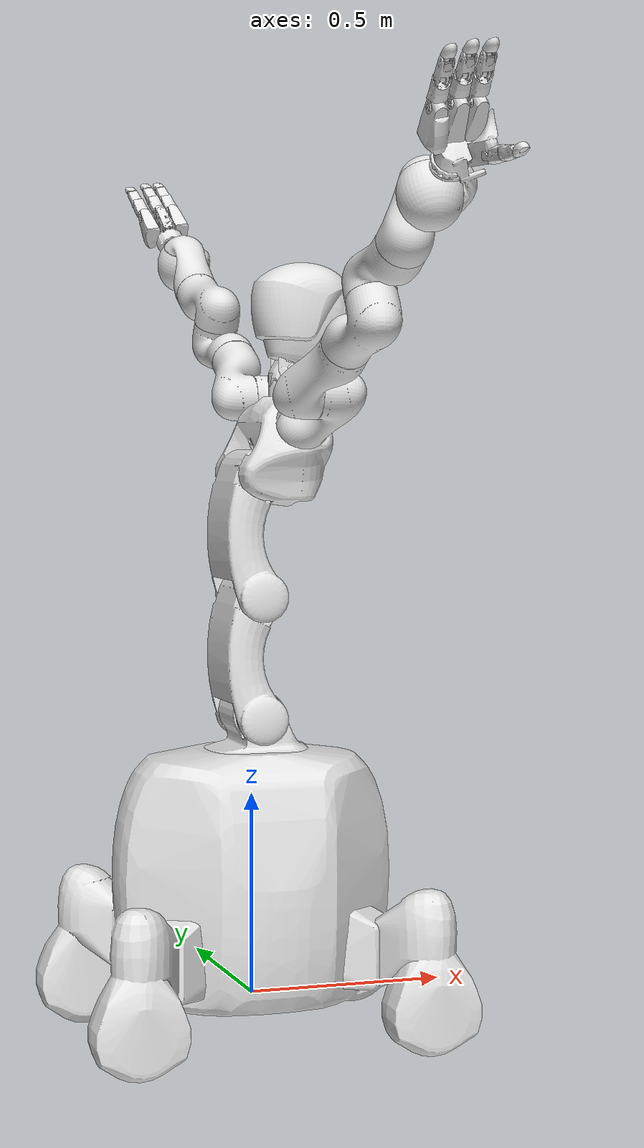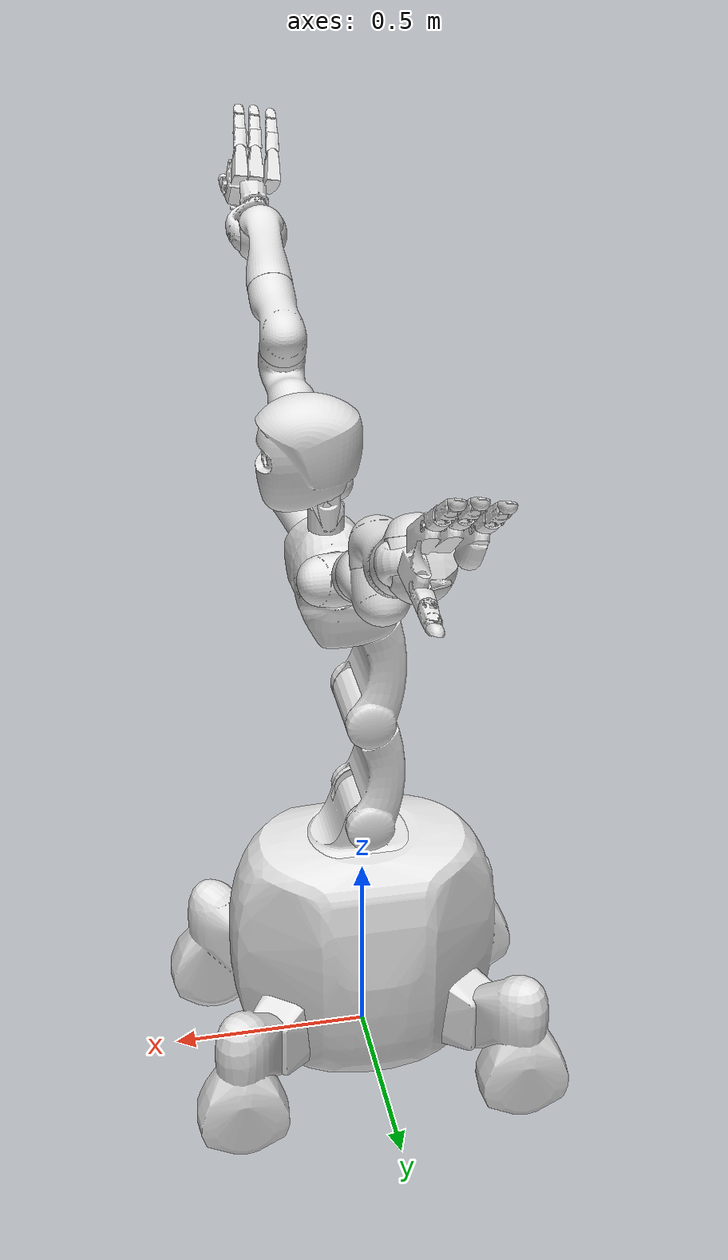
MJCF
<?xml version="1.0" ?>
<mujoco model="rollin-justin">
	<compiler meshdir="rollin-justin/meshes" texturedir="rollin-justin/textures" angle="radian" autolimits="true" balanceinertia="true" boundmass="0.000001" boundinertia="0.000001"/>
	<default>
		<default class="rollin-justin_visual">
			<geom contype="0" conaffinity="0"/>
		</default>
		<default class="rollin-justin_collision">
			<geom rgba="0.9 0.9 0.9 1.0"/>
		</default>
	</default>
	<asset>
		<mesh name="base" file="stl/base.stl" scale="1.0 1.0 1.0"/>
		<mesh name="torso1" file="stl/torso1.stl" scale="1.0 1.0 1.0"/>
		<mesh name="torso2" file="stl/torso2.stl" scale="1.0 1.0 1.0"/>
		<mesh name="torso3" file="stl/torso3.stl" scale="1.0 1.0 1.0"/>
		<mesh name="torso4" file="stl/torso4.stl" scale="1.0 1.0 1.0"/>
		<mesh name="head1" file="stl/head1.stl" scale="1.0 1.0 1.0"/>
		<mesh name="head2" file="stl/head2.stl" scale="1.0 1.0 1.0"/>
		<mesh name="left_arm1" file="stl/left_arm1.stl" scale="1.0 1.0 1.0"/>
		<mesh name="left_arm2" file="stl/left_arm2.stl" scale="1.0 1.0 1.0"/>
		<mesh name="left_arm3" file="stl/left_arm3.stl" scale="1.0 1.0 1.0"/>
		<mesh name="left_arm4" file="stl/left_arm4.stl" scale="1.0 1.0 1.0"/>
		<mesh name="left_arm5" file="stl/left_arm5.stl" scale="1.0 1.0 1.0"/>
		<mesh name="left_arm6" file="stl/left_arm6.stl" scale="1.0 1.0 1.0"/>
		<mesh name="left_arm7" file="stl/left_arm7.stl" scale="1.0 1.0 1.0"/>
		<mesh name="finger_base" file="stl/finger-base.stl" scale="1.0 1.0 1.0"/>
		<mesh name="finger_phaprox" file="stl/finger-phaprox.stl" scale="1.0 1.0 1.0"/>
		<mesh name="finger_phamed" file="stl/finger-phamed.stl" scale="1.0 1.0 1.0"/>
		<mesh name="hii2_geh_phadist_gesamt_asm" file="stl/hii2_geh_phadist_gesamt_asm.stl" scale="1.0 1.0 1.0"/>
		<mesh name="right_arm1" file="stl/right_arm1.stl" scale="1.0 1.0 1.0"/>
		<mesh name="right_arm2" file="stl/right_arm2.stl" scale="1.0 1.0 1.0"/>
		<mesh name="right_arm3" file="stl/right_arm3.stl" scale="1.0 1.0 1.0"/>
		<mesh name="right_arm4" file="stl/right_arm4.stl" scale="1.0 1.0 1.0"/>
		<mesh name="right_arm5" file="stl/right_arm5.stl" scale="1.0 1.0 1.0"/>
		<mesh name="right_arm6" file="stl/right_arm6.stl" scale="1.0 1.0 1.0"/>
		<mesh name="right_arm7" file="stl/right_arm7.stl" scale="1.0 1.0 1.0"/>
		<material name="material_1_003" rgba="0.09175040572881699 0.1469046026468277 0.32767999172210693 1.0" emission="0.0"/>
		<material name="material_1" rgba="0.11468800157308578 0.18363070487976074 0.40959998965263367 1.0" emission="0.0"/>
		<material name="material_3" rgba="0.5600000023841858 0.5499199628829956 0.459199994802475 1.0" emission="0.0"/>
		<material name="material_3_001" rgba="0.7027199864387512 0.7591999769210815 0.800000011920929 1.0" emission="0.0"/>
		<material name="Material_001" rgba="0.6399999856948853 0.6399999856948853 0.6399999856948853 1.0" emission="0.0"/>
		<material name="material_8" rgba="0.5120000243186951 0.5120000243186951 0.5120000243186951 1.0" emission="0.0"/>
		<material name="material_5_001" rgba="0.800000011920929 0.0 0.0 1.0"/>
		<material name="material_5_002" rgba="0.800000011920929 0.0 0.0 1.0"/>
		<material name="material_2_005" rgba="0.5760000348091125 0.5656319856643677 0.47231999039649963 1.0" emission="0.0"/>
		<material name="material_1_006" rgba="0.29600000381469727 0.4480000138282776 0.7360000610351562 1.0" emission="0.0"/>
		<material name="material_4_001_001" rgba="0.4672001004219055 0.4672001004219055 0.4672001004219055 1.0" emission="0.0"/>
		<material name="material_1_006_001_001" rgba="0.1515520066022873 0.22937600314617157 0.3768320083618164 1.0" emission="0.0"/>
		<material name="material_6" rgba="0.13750000298023224 0.19694800674915314 0.25 1.0" emission="0.0"/>
	</asset>
	<worldbody>
		<body name="rollin-justin" pos="0.0 0.0 0.0" quat="1.0 0.0 0.0 0.0">
			<body name="base_link" pos="0.0 0.0 0.0" quat="1.0 0.0 0.0 0.0">
				<inertial mass="224.7355194091797" pos="-0.00018272799206897616 1.6127123672049493e-05 0.23259808123111725" quat="0.5002467036247253 0.5003892779350281 0.4996047914028168 -0.499758780002594" diaginertia="14.472777366638184 23.62435531616211 27.990686416625977"/>
				<geom name="base_link_geom_collision_0_Mobile_Wheel_Flat_Ch_003" type="mesh" pos="0.0 0.0 0.0" quat="1.0 0.0 0.0 0.0" mesh="base" material="material_1_003" class="rollin-justin_collision"/>
				<body name="torso1" pos="0.0 0.0 0.6938999891281128" quat="1.0 0.0 0.0 0.0">
					<inertial mass="1.4712985754013062" pos="0.025275835767388344 0.0007431928534060717 0.6334223747253418" quat="0.8976299166679382 0.019020117819309235 0.4402303695678711 -0.009795311838388443" diaginertia="0.007986108772456646 0.011889693327248096 0.012127798981964588"/>
					<geom name="torso1_geom_collision_0_torso_link2_iv__Geometry_0" type="mesh" pos="0.0 0.0 0.0" quat="1.0 0.0 0.0 0.0" mesh="torso1" material="material_1" class="rollin-justin_collision"/>
					<joint name="torso1_joint" type="hinge" damping="1" pos="0.0 0.0 0.0" range="-1.7453300952911377 3.3161301612854004" axis="0.0 0.0 1.0"/>
					<body name="torso2" pos="0.0 0.0 0.0" quat="0.5000031590461731 -0.5 -0.5 -0.4999968409538269">
						<inertial mass="6.738800525665283" pos="-0.023618027567863464 3.0410037652472965e-06 0.8688623905181885" quat="0.7064671516418457 -0.706275999546051 0.03223329037427902 -0.032238781452178955" diaginertia="0.03799419850111008 0.29220476746559143 0.31166598200798035"/>
						<geom name="torso2_geom_collision_0_torso_link3_iv__Geometry_2" type="mesh" pos="0.0 0.0 0.0" quat="1.0 0.0 0.0 0.0" mesh="torso2" material="material_3" class="rollin-justin_collision"/>
						<joint name="torso2_joint" type="hinge" damping="1" pos="0.0 0.0 0.0" range="-1.2217299938201904 0.5235999822616577" axis="0.0 0.0 1.0"/>
						<body name="torso3" pos="0.30000001192092896 -8.470329472543003e-22 0.0" quat="1.0 2.0536479054491018e-23 -1.6155871338926322e-27 0.0">
							<inertial mass="6.738800525665283" pos="-0.023616129532456398 3.0410037652472965e-06 1.1688623428344727" quat="0.7064671516418457 -0.706275999546051 0.03223329037427902 -0.032238781452178955" diaginertia="0.03799419850111008 0.29220476746559143 0.31166598200798035"/>
							<geom name="torso3_geom_collision_0_torso_link3_iv__Geometry_2" type="mesh" pos="0.0 0.0 0.0" quat="1.0 0.0 0.0 0.0" mesh="torso3" material="material_3" class="rollin-justin_collision"/>
							<joint name="torso3_joint" type="hinge" damping="1" pos="-1.0536230218007488e-21 -1.6653345369377348e-16 1.9006558680808532e-21" range="0.17453299462795258 2.338740110397339" axis="0.0 0.0 1.0"/>
							<body name="torso4" pos="0.30000001192092896 -1.6940658945086007e-21 6.462348535570529e-27" quat="1.0 2.0536479054491018e-23 -1.6155871338926322e-27 0.0">
								<inertial mass="7.379939079284668" pos="0.07681548595428467 -3.699501758092083e-05 1.3429720401763916" quat="0.6380520462989807 0.638219952583313 0.304882287979126 0.30432167649269104" diaginertia="0.07201973348855972 0.11302699148654938 0.1323736608028412"/>
								<geom name="torso4_geom_collision_0_torso_link5_iv__Geometry_2" type="mesh" pos="0.0 0.0 0.0" quat="1.0 0.0 0.0 0.0" mesh="torso4" material="material_3_001" class="rollin-justin_collision"/>
								<joint name="torso4_joint" type="hinge" damping="1" pos="-3.5121412786760217e-22 -5.551115123125783e-17 2.0452735347841183e-21" range="-1.5700000524520874 0.0" axis="0.0 0.0 1.0"/>
								<body name="left_arm1" pos="0.1899999976158142 0.08799999952316284 0.25600001215934753" quat="-1.2815869467885932e-06 0.9659269452095032 -3.433941628827597e-07 -0.25881481170654297">
									<inertial mass="2.278517246246338" pos="0.12034201622009277 0.19148801267147064 1.4466506242752075" quat="0.7060986161231995 0.03782321885228157 -0.7060900926589966 -0.037828341126441956" diaginertia="0.006829763762652874 0.02660626918077469 0.029757529497146606"/>
									<geom name="left_arm1_geom_collision_0_right_lwr_3_link12_34_iv__Geometry_4" type="mesh" pos="0.0 0.0 0.0" quat="1.0 0.0 0.0 0.0" mesh="left_arm1" material="material_5_001" class="rollin-justin_collision"/>
									<joint name="left_arm1_joint" type="hinge" damping="1" pos="3.512076655190666e-22 5.551106189575167e-17 -1.387813853239418e-17" range="-2.967060089111328 2.967060089111328" axis="0.0 0.0 1.0"/>
									<body name="left_arm2" pos="0.0 0.0 0.0" quat="0.7071090340614319 0.7071045637130737 3.921008487941007e-17 3.9296260555625847e-17">
										<inertial mass="2.2794947624206543" pos="0.05568176135420799 0.3209896683692932 1.5214245319366455" quat="0.47288256883621216 0.5257428884506226 -0.4728938043117523 -0.525688111782074" diaginertia="0.006845938973128796 0.02685559168457985 0.03002076782286167"/>
										<geom name="left_arm2_geom_collision_0_left_lwr_3_link23_45_iv_MatrixTransform_Group__Geometry_4" type="mesh" pos="0.0 0.0 0.0" quat="1.0 0.0 0.0 0.0" mesh="left_arm2" material="material_5_002" class="rollin-justin_collision"/>
										<joint name="left_arm2_joint" type="hinge" damping="1" pos="0.0 0.0 -0.0" range="-2.094399929046631 2.094399929046631" axis="0.0 0.0 1.0"/>
										<body name="left_arm3" pos="-2.220446049250313e-16 -0.4000000059604645 0.0" quat="-0.49999797344207764 0.5000028610229492 0.5000001788139343 0.4999989867210388">
											<inertial mass="2.278517246246338" pos="0.08800058811903 0.5540670156478882 1.6186442375183105" quat="0.7060986161231995 0.03782321885228157 -0.7060900926589966 -0.037828341126441956" diaginertia="0.006829763762652874 0.02660626918077469 0.029757529497146606"/>
											<geom name="left_arm3_geom_collision_0_right_lwr_3_link12_34_iv__Geometry_4" type="mesh" pos="0.0 0.0 0.0" quat="1.0 0.0 0.0 0.0" mesh="left_arm3" material="material_5_001" class="rollin-justin_collision"/>
											<joint name="left_arm3_joint" type="hinge" damping="1" pos="5.55122232573317e-17 9.614831788194643e-17 2.2204426081789649e-16" range="-2.967060089111328 2.967060089111328" axis="0.0 0.0 1.0"/>
											<body name="left_arm4" pos="-1.3877787807814457e-17 0.0 0.0" quat="0.7071090340614319 0.7071045637130737 -5.4967650555418635e-17 -6.3249128903851494e-18">
												<inertial mass="2.2794947624206543" pos="0.08800823241472244 0.6512435078620911 1.7494093179702759" quat="0.47288256883621216 0.5257428884506226 -0.4728938043117523 -0.525688111782074" diaginertia="0.006845938973128796 0.02685559168457985 0.03002076782286167"/>
												<geom name="left_arm4_geom_collision_0_left_lwr_3_link23_45_iv_MatrixTransform_Group__Geometry_4" type="mesh" pos="0.0 0.0 0.0" quat="1.0 0.0 0.0 0.0" mesh="left_arm4" material="material_5_002" class="rollin-justin_collision"/>
												<joint name="left_arm4_joint" type="hinge" damping="1" pos="1.3877787807814457e-17 9.721435226537409e-23 -1.0364679981719312e-22" range="-2.094399929046631 2.094399929046631" axis="0.0 0.0 1.0"/>
												<body name="left_arm5" pos="1.3877787807814457e-17 -0.38999998569488525 -2.220446049250313e-16" quat="0.7071090340614319 -0.7071045637130737 1.4973237575545396e-22 5.98937076086506e-22">
													<inertial mass="1.2786157131195068" pos="0.08799681067466736 0.8377841711044312 1.8480994701385498" quat="0.028897732496261597 0.7065482139587402 -0.02890058048069477 -0.706483781337738" diaginertia="0.0032310120295733213 0.01969139277935028 0.02106323279440403"/>
													<geom name="left_arm5_geom_collision_0_left_lwr_3_link56_iv_MatrixTransform_Group__Geometry_1" type="mesh" pos="0.0 0.0 0.0" quat="1.0 0.0 0.0 0.0" mesh="left_arm5" material="material_2_005" class="rollin-justin_collision"/>
													<joint name="left_arm5_joint" type="hinge" damping="1" pos="-1.3879634074941675e-17 -1.4869411926143026e-17 -2.478076149415833e-16" range="-2.967060089111328 2.967060089111328" axis="0.0 0.0 1.0"/>
													<body name="left_arm6" pos="0.0 0.0 0.0" quat="0.5000038146972656 -0.4999982714653015 0.49999934434890747 0.4999985694885254">
														<inertial mass="1.3991453647613525" pos="0.08615120500326157 0.9439283013343811 1.8723913431167603" quat="0.7144667506217957 0.6996641755104065 0.00035026270779781044 -0.0026795067824423313" diaginertia="0.0027283544186502695 0.002825313014909625 0.0028757851105183363"/>
														<geom name="left_arm6_geom_collision_0_left_lwr_3_link67_iv_MatrixTransform__Geometry_0" type="mesh" pos="0.0 0.0 0.0" quat="1.0 0.0 0.0 0.0" mesh="left_arm6" material="material_1_006" class="rollin-justin_collision"/>
														<joint name="left_arm6_joint" type="hinge" damping="1" pos="-0.0 0.0 0.0" range="-0.785398006439209 1.3962599039077759" axis="0.0 0.0 1.0"/>
														<body name="left_arm7" pos="2.220446049250313e-16 -1.3877787807814457e-17 0.0" quat="0.5000036954879761 -0.49999913573265076 -0.499999463558197 -0.49999767541885376">
															<inertial mass="1.0555163621902466" pos="0.08725663274526596 1.0829014778137207 1.9724704027175903" quat="-0.5496354103088379 -0.4028584659099579 0.41921886801719666 0.599884569644928" diaginertia="0.0023810488637536764 0.03413848578929901 0.03500598669052124"/>
															<geom name="left_arm7_geom_collision_0_left_lwr_3_link7_bsa_iv_MatrixTransform_Group__Geometry_3_003" type="mesh" pos="0.0 0.0 0.0" quat="1.0 0.0 0.0 0.0" mesh="left_arm7" material="material_4_001_001" class="rollin-justin_collision"/>
															<joint name="left_arm7_joint" type="hinge" damping="1" pos="1.2015992018956641e-17 2.220446578645905e-16 -6.94176173909095e-18" range="-0.785398006439209 2.3561899662017822" axis="0.0 0.0 1.0"/>
															<body name="left_1thumb_base" pos="-0.05040000006556511 0.2029000073671341 -0.04619999974966049" quat="0.3802274763584137 0.28664183616638184 0.5528058409690857 0.6838634610176086">
																<body name="left_1thumb1" pos="0.0 0.0 0.0" quat="1.0 6.071532165918825e-18 3.0814879110195774e-33 8.673617379884035e-19">
																	<joint name="left_1thumb1_joint" type="hinge" damping="1" pos="0.0 0.0 0.0" range="-0.5235990285873413 0.5235990285873413" axis="0.0 0.0 1.0"/>
																	<body name="left_1thumb2" pos="0.0 0.0 0.0" quat="0.7071090340614319 0.7071045637130737 2.3919178109056975e-17 -8.58644660539136e-18">
																		<inertial mass="0.06310664862394333" pos="0.134935662150383 1.1825547218322754 1.9325861930847168" quat="0.7089327573776245 -0.7050617337226868 0.016155000776052475 -0.006425226107239723" diaginertia="1.0902839676418807e-05 0.0001451449206797406 0.00014662362809758633"/>
																		<geom name="left_1thumb2_geom_collision_0_finger_phaprox_ShapeIndexedFaceSet_001" type="mesh" pos="0.0 0.0 0.0" quat="1.0 0.0 0.0 0.0" mesh="finger_phaprox" class="rollin-justin_collision"/>
																		<joint name="left_1thumb2_joint" type="hinge" damping="1" pos="0.0 0.0 0.0" range="-0.34906598925590515 1.500980019569397" axis="0.0 0.0 1.0"/>
																		<body name="left_1thumb3" pos="0.07500000298023224 0.0 -1.1102230246251565e-16" quat="1.0 0.0 0.0 0.0">
																			<inertial mass="0.026522383093833923" pos="0.13785885274410248 1.2356280088424683 1.930206060409546" quat="0.7099601626396179 -0.7039278745651245 0.006069454830139875 -0.02013099379837513" diaginertia="4.763814104080666e-06 1.7667984138824977e-05 1.865063313744031e-05"/>
																			<geom name="left_1thumb3_geom_collision_0_finger_phamed_ShapeIndexedFaceSet_001" type="mesh" pos="0.0 0.0 0.0" quat="1.0 0.0 0.0 0.0" mesh="finger_phamed" class="rollin-justin_collision"/>
																			<joint name="left_1thumb3_joint" type="hinge" damping="1" pos="-1.119974838846279e-17 1.4848274483642091e-16 -1.5067052506006036e-16" range="-0.17453299462795258 1.7627800703048706" axis="0.0 0.0 1.0"/>
																			<body name="left_1thumb4" pos="0.03999000042676926 -2.220446049250313e-16 -1.1102230246251565e-16" quat="0.7071090340614319 0.0 0.0 -0.7071045637130737">
																				<inertial mass="0.027972880750894547" pos="0.1380554437637329 1.279028296470642 1.9312243461608887" quat="0.4448316991329193 0.49165210127830505 0.5386440753936768 0.5198706984519958" diaginertia="2.3384206997434376e-06 1.9123181118629873e-05 1.9700737539096735e-05"/>
																				<geom name="left_1thumb4_geom_collision_0_hii2_geh_phadist_gesamt_asm_ShapeIndexedFaceSet_001" type="mesh" pos="0.0 0.0 0.0" quat="1.0 0.0 0.0 0.0" mesh="hii2_geh_phadist_gesamt_asm" class="rollin-justin_collision"/>
																				<joint name="left_1thumb4_joint" type="hinge" damping="1" pos="2.1631920483207407e-16 1.1503569015039434e-16 4.871265634708045e-17" range="-0.17453299462795258 1.7627800703048706" axis="0.0 0.0 1.0"/>
																			</body>
																		</body>
																	</body>
																</body>
															</body>
															<body name="left_2tip_base" pos="0.04820000007748604 0.24089999496936798 -0.023600000888109207" quat="-0.5390362739562988 0.5562926530838013 0.5027128458023071 -0.3837422728538513">
																<body name="left_2tip1" pos="4.440892098500626e-16 5.551115123125783e-17 1.1102230246251565e-16" quat="1.0 3.469446951953614e-18 -1.3877787807814457e-17 -3.469446951953614e-18">
																	<joint name="left_2tip1_joint" type="hinge" damping="1" pos="-6.3397650010016e-17 -4.565960218931868e-16 -1.1111124257633858e-17" range="-0.5235990285873413 0.5235990285873413" axis="0.0 0.0 1.0"/>
																	<body name="left_2tip2" pos="4.440892098500626e-16 5.551115123125783e-17 1.1102230246251565e-16" quat="0.7071090340614319 0.7071045637130737 9.813047093147255e-18 4.415864988061671e-17">
																		<inertial mass="0.06310664862394333" pos="0.10744867473840714 1.1544967889785767 2.0699188709259033" quat="0.7089327573776245 -0.7050617337226868 0.016155000776052475 -0.006425226107239723" diaginertia="1.0902839676418807e-05 0.0001451449206797406 0.00014662362809758633"/>
																		<geom name="left_2tip2_geom_collision_0_finger_phaprox_ShapeIndexedFaceSet_001" type="mesh" pos="0.0 0.0 0.0" quat="1.0 0.0 0.0 0.0" mesh="finger_phaprox" class="rollin-justin_collision"/>
																		<joint name="left_2tip2_joint" type="hinge" damping="1" pos="-6.3397650010016e-17 -4.565960218931868e-16 -1.1111124257633858e-17" range="-0.34906598925590515 1.500980019569397" axis="0.0 0.0 1.0"/>
																		<body name="left_2tip3" pos="0.07500000298023224 -1.1102230246251565e-16 -1.6653345369377348e-16" quat="1.0 -6.938893903907228e-18 -6.938893903907228e-18 5.551115123125783e-17">
																			<inertial mass="0.026522383093833923" pos="0.09987806528806686 1.1941273212432861 2.104604482650757" quat="0.7099601626396179 -0.7039278745651245 0.006069454830139875 -0.02013099379837513" diaginertia="4.763814104080666e-06 1.7667984138824977e-05 1.865063313744031e-05"/>
																			<geom name="left_2tip3_geom_collision_0_finger_phamed_ShapeIndexedFaceSet_001" type="mesh" pos="0.0 0.0 0.0" quat="1.0 0.0 0.0 0.0" mesh="finger_phamed" class="rollin-justin_collision"/>
																			<joint name="left_2tip3_joint" type="hinge" damping="1" pos="2.641402895189979e-16 -1.252385990467664e-16 5.870309960177909e-16" range="-0.17453299462795258 1.7627800703048706" axis="0.0 0.0 1.0"/>
																			<body name="left_2tip4" pos="0.03999999910593033 1.1102230246251565e-16 -1.1102230246251565e-16" quat="0.7071090340614319 1.2416987454718263e-22 -5.3971632453676184e-17 -0.7071045637130737">
																				<inertial mass="0.027972880750894547" pos="0.09557826817035675 1.2286394834518433 2.130603551864624" quat="0.4448316991329193 0.49165210127830505 0.5386440753936768 0.5198706984519958" diaginertia="2.3384206997434376e-06 1.9123181118629873e-05 1.9700737539096735e-05"/>
																				<geom name="left_2tip4_geom_collision_0_hii2_geh_phadist_gesamt_asm_ShapeIndexedFaceSet_001" type="mesh" pos="0.0 0.0 0.0" quat="1.0 0.0 0.0 0.0" mesh="hii2_geh_phadist_gesamt_asm" class="rollin-justin_collision"/>
																				<joint name="left_2tip4_joint" type="hinge" damping="1" pos="-5.628677533059165e-17 -1.047256514385293e-16 -4.220430068758421e-16" range="-0.17453299462795258 1.7627800703048706" axis="0.0 0.0 1.0"/>
																			</body>
																		</body>
																	</body>
																</body>
															</body>
															<body name="left_3middle_base" pos="0.04690000042319298 0.2353000044822693 0.016289999708533287" quat="-0.5390362739562988 0.5562926530838013 0.5027128458023071 -0.3837422728538513">
																<inertial mass="0.10227017104625702" pos="0.037921417504549026 0.1940096616744995 0.011176788248121738" quat="-0.6848092675209045 0.7286957502365112 -0.004266366828233004 -0.004536712542176247" diaginertia="2.836716521414928e-05 0.000272170000243932 0.00028322578873485327"/>
																<geom name="left_3middle_base_geom_collision_0_finger_base_ShapeIndexedFaceSet_001" type="mesh" pos="0.0 0.0 0.0" quat="1.0 0.0 0.0 0.0" mesh="finger_base" class="rollin-justin_collision"/>
																<body name="left_3middle1" pos="4.440892098500626e-16 5.551115123125783e-17 0.0" quat="1.0 3.469446951953614e-18 -1.3877787807814457e-17 -3.469446951953614e-18">
																	<joint name="left_3middle1_joint" type="hinge" damping="1" pos="9.848323864730804e-18 -4.3779276396686817e-16 -9.239713321335726e-17" range="-0.5235990285873413 0.5235990285873413" axis="0.0 0.0 1.0"/>
																	<body name="left_3middle2" pos="4.440892098500626e-16 5.551115123125783e-17 0.0" quat="0.7071090340614319 0.7071045637130737 9.813047093147255e-18 4.415864988061671e-17">
																		<inertial mass="0.06310664862394333" pos="0.06755862385034561 1.1502968072891235 2.0659937858581543" quat="0.7089327573776245 -0.7050617337226868 0.016155000776052475 -0.006425226107239723" diaginertia="1.0902839676418807e-05 0.0001451449206797406 0.00014662362809758633"/>
																		<geom name="left_3middle2_geom_collision_0_finger_phaprox_ShapeIndexedFaceSet_001" type="mesh" pos="0.0 0.0 0.0" quat="1.0 0.0 0.0 0.0" mesh="finger_phaprox" class="rollin-justin_collision"/>
																		<joint name="left_3middle2_joint" type="hinge" damping="1" pos="9.848323864730804e-18 -4.3779276396686817e-16 -9.239713321335726e-17" range="-0.34906598925590515 1.500980019569397" axis="0.0 0.0 1.0"/>
																		<body name="left_3middle3" pos="0.07498999685049057 -2.220446049250313e-16 0.0" quat="1.0 -6.938893903907228e-18 -6.938893903907228e-18 5.551115123125783e-17">
																			<inertial mass="0.026522383093833923" pos="0.05998916178941727 1.1899199485778809 2.100672721862793" quat="0.7099601626396179 -0.7039278745651245 0.006069454830139875 -0.02013099379837513" diaginertia="4.763814104080666e-06 1.7667984138824977e-05 1.865063313744031e-05"/>
																			<geom name="left_3middle3_geom_collision_0_finger_phamed_ShapeIndexedFaceSet_001" type="mesh" pos="0.0 0.0 0.0" quat="1.0 0.0 0.0 0.0" mesh="finger_phamed" class="rollin-justin_collision"/>
																			<joint name="left_3middle3_joint" type="hinge" damping="1" pos="2.287408238895502e-16 7.966926542333442e-17 5.466105308352565e-16" range="-0.17453299462795258 1.7627800703048706" axis="0.0 0.0 1.0"/>
																			<body name="left_3middle4" pos="0.03999999910593033 -1.1102230246251565e-16 -5.551115123125783e-17" quat="0.7071090340614319 1.2416987454718263e-22 -5.3971632453676184e-17 -0.7071045637130737">
																				<inertial mass="0.027972880750894547" pos="0.05568936839699745 1.224432110786438 2.12667179107666" quat="0.4448316991329193 0.49165210127830505 0.5386440753936768 0.5198706984519958" diaginertia="2.3384206997434376e-06 1.9123181118629873e-05 1.9700737539096735e-05"/>
																				<geom name="left_3middle4_geom_collision_0_hii2_geh_phadist_gesamt_asm_ShapeIndexedFaceSet_001" type="mesh" pos="0.0 0.0 0.0" quat="1.0 0.0 0.0 0.0" mesh="hii2_geh_phadist_gesamt_asm" class="rollin-justin_collision"/>
																				<joint name="left_3middle4_joint" type="hinge" damping="1" pos="7.1989594884939e-17 8.461759219652464e-17 -4.1312086473527774e-16" range="-0.17453299462795258 1.7627800703048706" axis="0.0 0.0 1.0"/>
																			</body>
																		</body>
																	</body>
																</body>
															</body>
															<body name="left_4ring_base" pos="0.03739999979734421 0.22990000247955322 0.062300000339746475" quat="-0.5390362739562988 0.5562926530838013 0.5027128458023071 -0.3837422728538513">
																<body name="left_4ring1" pos="4.440892098500626e-16 5.551115123125783e-17 -1.1102230246251565e-16" quat="1.0 3.469446951953614e-18 -1.3877787807814457e-17 -3.469446951953614e-18">
																	<joint name="left_4ring1_joint" type="hinge" damping="1" pos="8.309429608511639e-17 -4.1898945310099036e-16 -1.7368313968753882e-16" range="-0.5235990285873413 0.5235990285873413" axis="0.0 0.0 1.0"/>
																	<body name="left_4ring2" pos="4.440892098500626e-16 5.551115123125783e-17 -1.1102230246251565e-16" quat="0.7071090340614319 0.7071045637130737 9.813047093147255e-18 4.415864988061671e-17">
																		<inertial mass="0.06310664862394333" pos="0.021548444405198097 1.1503700017929077 2.055067300796509" quat="0.7089327573776245 -0.7050617337226868 0.016155000776052475 -0.006425226107239723" diaginertia="1.0902839676418807e-05 0.0001451449206797406 0.00014662362809758633"/>
																		<geom name="left_4ring2_geom_collision_0_finger_phaprox_ShapeIndexedFaceSet_001" type="mesh" pos="0.0 0.0 0.0" quat="1.0 0.0 0.0 0.0" mesh="finger_phaprox" class="rollin-justin_collision"/>
																		<joint name="left_4ring2_joint" type="hinge" damping="1" pos="8.309429608511639e-17 -4.1898945310099036e-16 -1.7368313968753882e-16" range="-0.34906598925590515 1.500980019569397" axis="0.0 0.0 1.0"/>
																		<body name="left_4ring3" pos="0.07500000298023224 -2.220446049250313e-16 -5.551115123125783e-17" quat="1.0 -6.938893903907228e-18 -6.938893903907228e-18 5.551115123125783e-17">
																			<inertial mass="0.026522383093833923" pos="0.013977831229567528 1.1900005340576172 2.0897529125213623" quat="0.7099601626396179 -0.7039278745651245 0.006069454830139875 -0.02013099379837513" diaginertia="4.763814104080666e-06 1.7667984138824977e-05 1.865063313744031e-05"/>
																			<geom name="left_4ring3_geom_collision_0_finger_phamed_ShapeIndexedFaceSet_001" type="mesh" pos="0.0 0.0 0.0" quat="1.0 0.0 0.0 0.0" mesh="finger_phamed" class="rollin-justin_collision"/>
																			<joint name="left_4ring3_joint" type="hinge" damping="1" pos="2.222708156615074e-16 8.562226591619685e-17 1.6792266713660934e-16" range="-0.17453299462795258 1.7627800703048706" axis="0.0 0.0 1.0"/>
																			<body name="left_4ring4" pos="0.03999999910593033 -1.1102230246251565e-16 -5.551115123125783e-17" quat="0.7071090340614319 1.2416987454718263e-22 -5.3971632453676184e-17 -0.7071045637130737">
																				<inertial mass="0.027972880750894547" pos="0.009678036905825138 1.2245126962661743 2.1157519817352295" quat="0.4448316991329193 0.49165210127830505 0.5386440753936768 0.5198706984519958" diaginertia="2.3384206997434376e-06 1.9123181118629873e-05 1.9700737539096735e-05"/>
																				<geom name="left_4ring4_geom_collision_0_hii2_geh_phadist_gesamt_asm_ShapeIndexedFaceSet_001" type="mesh" pos="0.0 0.0 0.0" quat="1.0 0.0 0.0 0.0" mesh="hii2_geh_phadist_gesamt_asm" class="rollin-justin_collision"/>
																				<joint name="left_4ring4_joint" type="hinge" damping="1" pos="1.2306275669372733e-16 2.939276457121837e-17 2.4551354200923077e-17" range="-0.17453299462795258 1.7627800703048706" axis="0.0 0.0 1.0"/>
																			</body>
																		</body>
																	</body>
																</body>
															</body>
															<body name="left_palm" pos="0.0 0.10109999775886536 0.0" quat="9.381886343362567e-07 9.381827226206951e-07 0.7071045637130737 0.7071090340614319"/>
														</body>
													</body>
												</body>
											</body>
										</body>
									</body>
								</body>
								<body name="right_arm1" pos="0.1899999976158142 0.08799999952316284 -0.25600001215934753" quat="0.25881481170654297 9.381927839058335e-07 0.9659269452095032 9.381927839058335e-07">
									<inertial mass="2.278517246246338" pos="0.12034415453672409 -0.19148379564285278 1.446655035018921" quat="-0.7060900926589966 -0.037828389555215836 0.7060985565185547 0.03782327473163605" diaginertia="0.006829763762652874 0.02660626731812954 0.029757527634501457"/>
									<geom name="right_arm1_geom_collision_0_right_lwr_3_link12_34_iv__Geometry_4" type="mesh" pos="0.0 0.0 0.0" quat="1.0 0.0 0.0 0.0" mesh="right_arm1" material="material_5_001" class="rollin-justin_collision"/>
									<joint name="right_arm1_joint" type="hinge" damping="1" pos="1.75603840332598e-21 2.7755583556562794e-16 1.3876031703374007e-17" range="-2.967060089111328 2.967060089111328" axis="0.0 0.0 1.0"/>
									<body name="right_arm2" pos="-2.220446049250313e-16 0.0 -1.1102230246251565e-16" quat="0.7071090340614319 0.7071045637130737 -2.994620756947174e-22 5.989454064576651e-22">
										<inertial mass="2.2794950008392334" pos="0.05568613484501839 -0.3209926187992096 1.5214184522628784" quat="-0.4728938639163971 -0.5256880521774292 0.47288259863853455 0.5257428288459778" diaginertia="0.006845939438790083 0.026855593547225 0.03002077154815197"/>
										<geom name="right_arm2_geom_collision_0_left_lwr_3_link23_45_iv_MatrixTransform_Group__Geometry_4" type="mesh" pos="0.0 0.0 0.0" quat="1.0 0.0 0.0 0.0" mesh="right_arm2" material="material_5_002" class="rollin-justin_collision"/>
										<joint name="right_arm2_joint" type="hinge" damping="1" pos="-9.614862228441185e-17 2.2204404905965967e-16 5.551252104235221e-17" range="-2.094399929046631 2.094399929046631" axis="0.0 0.0 1.0"/>
										<body name="right_arm3" pos="2.220446049250313e-16 0.4000000059604645 -1.3877787807814457e-17" quat="-0.5 0.49999889731407166 0.49999815225601196 0.5000029802322388">
											<inertial mass="2.278517246246338" pos="0.08801484107971191 -0.5540659427642822 1.6186442375183105" quat="-0.7060900926589966 -0.037828389555215836 0.7060985565185547 0.03782327473163605" diaginertia="0.006829763762652874 0.02660626731812954 0.029757527634501457"/>
											<geom name="right_arm3_geom_collision_0_right_lwr_3_link12_34_iv__Geometry_4" type="mesh" pos="0.0 0.0 0.0" quat="1.0 0.0 0.0 0.0" mesh="right_arm3" material="material_5_001" class="rollin-justin_collision"/>
											<joint name="right_arm3_joint" type="hinge" damping="1" pos="-1.2018573649648419e-17 6.935169936789515e-18 2.220447108041497e-16" range="-2.967060089111328 2.967060089111328" axis="0.0 0.0 1.0"/>
											<body name="right_arm4" pos="0.0 0.0 0.0" quat="0.7071090340614319 0.7071045637130737 1.497364021015142e-22 -1.4973573314746658e-22">
												<inertial mass="2.2794950008392334" pos="0.08801046013832092 -0.6512423753738403 1.7494093179702759" quat="-0.4728938639163971 -0.5256880521774292 0.47288259863853455 0.5257428288459778" diaginertia="0.006845939438790083 0.026855593547225 0.03002077154815197"/>
												<geom name="right_arm4_geom_collision_0_left_lwr_3_link23_45_iv_MatrixTransform_Group__Geometry_4" type="mesh" pos="0.0 0.0 0.0" quat="1.0 0.0 0.0 0.0" mesh="right_arm4" material="material_5_002" class="rollin-justin_collision"/>
												<joint name="right_arm4_joint" type="hinge" damping="1" pos="-0.0 0.0 0.0" range="-2.094399929046631 2.094399929046631" axis="0.0 0.0 1.0"/>
												<body name="right_arm5" pos="0.0 0.38999998569488525 2.220446049250313e-16" quat="-9.381886343362567e-07 -9.381827226206951e-07 0.7071045637130737 0.7071090340614319">
													<inertial mass="1.27861487865448" pos="0.08802531659603119 -0.8377830982208252 1.8480994701385498" quat="-0.7064837217330933 -0.02890048362314701 0.7065482139587402 0.028897924348711967" diaginertia="0.0032310073729604483 0.01969137229025364 0.02106321230530739"/>
													<geom name="right_arm5_geom_collision_0_left_lwr_3_link56_iv_MatrixTransform_Group__Geometry_1" type="mesh" pos="0.0 0.0 0.0" quat="1.0 0.0 0.0 0.0" mesh="right_arm5" material="material_2_005" class="rollin-justin_collision"/>
													<joint name="right_arm5_joint" type="hinge" damping="1" pos="-2.4494946473744053e-21 -2.0716787410482841e-16 -1.3678900501332207e-16" range="-2.967060089111328 2.967060089111328" axis="0.0 0.0 1.0"/>
													<body name="right_arm6" pos="0.0 -2.220446049250313e-16 0.0" quat="0.5000036358833313 0.4999975860118866 -0.4999995231628418 0.4999992549419403">
														<inertial mass="1.3991397619247437" pos="0.08616156876087189 -0.9439118504524231 1.872382402420044" quat="0.7144690155982971 -0.6996618509292603 0.0003507633809931576 0.002678107703104615" diaginertia="0.002728336723521352 0.002825294155627489 0.0028757681138813496"/>
														<geom name="right_arm6_geom_collision_0_left_lwr_3_link67_iv_MatrixTransform__Geometry_0_003" type="mesh" pos="0.0 0.0 0.0" quat="1.0 0.0 0.0 0.0" mesh="right_arm6" material="material_1_006_001_001" class="rollin-justin_collision"/>
														<joint name="right_arm6_joint" type="hinge" damping="1" pos="2.2572541167769954e-21 1.110199069474617e-16 -1.9229765485040753e-16" range="-0.785398006439209 1.3962599039077759" axis="0.0 0.0 1.0"/>
														<body name="right_arm7" pos="0.0 0.0 0.0" quat="0.5000005960464478 0.5000025629997253 0.4999975562095642 -0.4999992847442627">
															<inertial mass="0.901043713092804" pos="0.09258520603179932 -1.0850979089736938 1.976768970489502" quat="-0.35568782687187195 -0.5755832195281982 0.6251466274261475 0.38907817006111145" diaginertia="0.0021221847273409367 0.03040979616343975 0.031320925801992416"/>
															<geom name="right_arm7_geom_collision_0_aVis_Hand_right_Group__Geometry_5" type="mesh" pos="0.0 0.0 0.0" quat="1.0 0.0 0.0 0.0" mesh="right_arm7" material="material_6" class="rollin-justin_collision"/>
															<joint name="right_arm7_joint" type="hinge" damping="1" pos="0.0 0.0 -0.0" range="-0.785398006439209 2.3561899662017822" axis="0.0 0.0 1.0"/>
															<body name="right_1thumb_base" pos="-0.05040000006556511 0.2029000073671341 0.04619999974966049" quat="0.287274032831192 0.3797719180583954 0.6829645037651062 0.5539010763168335">
																<body name="right_1thumb1" pos="0.0 0.0 2.220446049250313e-16" quat="1.0 1.3877787807814457e-17 1.734723475976807e-18 -1.3010426069826053e-18">
																	<joint name="right_1thumb1_joint" type="hinge" damping="1" pos="1.2167786278805022e-17 -4.9424385707178226e-17 -2.1613186496694306e-16" range="-0.5235990285873413 0.5235990285873413" axis="0.0 0.0 1.0"/>
																	<body name="right_1thumb2" pos="0.0 0.0 2.220446049250313e-16" quat="0.7071090340614319 0.7071045637130737 3.97693631982531e-18 -3.3828159128106293e-18">
																		<inertial mass="0.06310664862394333" pos="0.1365979164838791 -1.1825270652770996 1.932967185974121" quat="0.7089327573776245 -0.7050617337226868 0.016155000776052475 -0.006425226107239723" diaginertia="1.0902839676418807e-05 0.0001451449206797406 0.00014662362809758633"/>
																		<geom name="right_1thumb2_geom_collision_0_finger_phaprox_ShapeIndexedFaceSet_001" type="mesh" pos="0.0 0.0 0.0" quat="1.0 0.0 0.0 0.0" mesh="finger_phaprox" class="rollin-justin_collision"/>
																		<joint name="right_1thumb2_joint" type="hinge" damping="1" pos="1.2167786278805022e-17 -4.9424385707178226e-17 -2.1613186496694306e-16" range="-0.34906598925590515 1.500980019569397" axis="0.0 0.0 1.0"/>
																		<body name="right_1thumb3" pos="0.07500000298023224 4.440892098500626e-16 0.0" quat="1.0 1.3877787807814457e-17 8.673617379884035e-19 5.7777898331617076e-34">
																			<inertial mass="0.026522383093833923" pos="0.1365964561700821 -1.2356464862823486 1.929916501045227" quat="0.7099601626396179 -0.7039278745651245 0.006069454830139875 -0.02013099379837513" diaginertia="4.763814104080666e-06 1.7667984138824977e-05 1.865063313744031e-05"/>
																			<geom name="right_1thumb3_geom_collision_0_finger_phamed_ShapeIndexedFaceSet_001" type="mesh" pos="0.0 0.0 0.0" quat="1.0 0.0 0.0 0.0" mesh="finger_phamed" class="rollin-justin_collision"/>
																			<joint name="right_1thumb3_joint" type="hinge" damping="1" pos="4.444228349521624e-16 1.7308264626749473e-17 -3.3724550620480964e-17" range="-0.17453299462795258 1.7627800703048706" axis="0.0 0.0 1.0"/>
																			<body name="right_1thumb4" pos="0.03999999910593033 2.220446049250313e-16 0.0" quat="0.7071090340614319 3.679861433862097e-18 1.4719508601174942e-17 -0.7071045637130737">
																				<inertial mass="0.027972880750894547" pos="0.13727280497550964 -1.2790491580963135 1.9310462474822998" quat="0.4448316991329193 0.49165210127830505 0.5386440753936768 0.5198706984519958" diaginertia="2.3384206997434376e-06 1.9123181118629873e-05 1.9700737539096735e-05"/>
																				<geom name="right_1thumb4_geom_collision_0_hii2_geh_phadist_gesamt_asm_ShapeIndexedFaceSet_001" type="mesh" pos="0.0 0.0 0.0" quat="1.0 0.0 0.0 0.0" mesh="hii2_geh_phadist_gesamt_asm" class="rollin-justin_collision"/>
																				<joint name="right_1thumb4_joint" type="hinge" damping="1" pos="2.269289145362548e-16 -2.8201581475750155e-17 -1.7919770798596854e-16" range="-0.17453299462795258 1.7627800703048706" axis="0.0 0.0 1.0"/>
																			</body>
																		</body>
																	</body>
																</body>
															</body>
															<body name="right_3middle_base" pos="0.04690000042319298 0.2353000044822693 -0.016289999708533287" quat="0.5554459691047668 -0.5398693680763245 -0.38459038734436035 0.5021066069602966">
																<body name="right_3middle1" pos="0.0 0.0 -2.220446049250313e-16" quat="1.0 6.938893903907228e-18 2.7755575615628914e-17 7.703719777548943e-34">
																	<joint name="right_3middle1_joint" type="hinge" damping="1" pos="1.4647904869502146e-16 -3.707859595081608e-17 -1.6270486477218404e-16" range="-0.5235990285873413 0.5235990285873413" axis="0.0 0.0 1.0"/>
																	<body name="right_3middle2" pos="0.0 0.0 -2.220446049250313e-16" quat="0.7071090340614319 0.7071045637130737 -4.906461508027686e-18 -3.9251940218405255e-17">
																		<inertial mass="0.06310664862394333" pos="0.06590870767831802 -1.1502935886383057 2.065706968307495" quat="0.7089327573776245 -0.7050617337226868 0.016155000776052475 -0.006425226107239723" diaginertia="1.0902839676418807e-05 0.0001451449206797406 0.00014662362809758633"/>
																		<geom name="right_3middle2_geom_collision_0_finger_phaprox_ShapeIndexedFaceSet_001" type="mesh" pos="0.0 0.0 0.0" quat="1.0 0.0 0.0 0.0" mesh="finger_phaprox" class="rollin-justin_collision"/>
																		<joint name="right_3middle2_joint" type="hinge" damping="1" pos="1.4647904869502146e-16 -3.707859595081608e-17 -1.6270486477218404e-16" range="-0.34906598925590515 1.500980019569397" axis="0.0 0.0 1.0"/>
																		<body name="right_3middle3" pos="0.07500000298023224 0.0 1.1102230246251565e-16" quat="1.0 6.071532165918825e-18 5.204170427930421e-18 1.3877787807814457e-17">
																			<inertial mass="0.026522383093833923" pos="0.06130296736955643 -1.1899374723434448 2.100893974304199" quat="0.7099601626396179 -0.7039278745651245 0.006069454830139875 -0.02013099379837513" diaginertia="4.763814104080666e-06 1.7667984138824977e-05 1.865063313744031e-05"/>
																			<geom name="right_3middle3_geom_collision_0_finger_phamed_ShapeIndexedFaceSet_001" type="mesh" pos="0.0 0.0 0.0" quat="1.0 0.0 0.0 0.0" mesh="finger_phamed" class="rollin-justin_collision"/>
																			<joint name="right_3middle3_joint" type="hinge" damping="1" pos="-5.251291929577362e-17 5.947727051021278e-17 -1.964154128792557e-16" range="-0.17453299462795258 1.7627800703048706" axis="0.0 0.0 1.0"/>
																			<body name="right_3middle4" pos="0.03999999910593033 0.0 5.551115123125783e-17" quat="0.7071090340614319 4.051696407279485e-17 3.549565349979785e-17 -0.7071045637130737">
																				<inertial mass="0.027972880750894547" pos="0.05652354285120964 -1.224450707435608 2.126807689666748" quat="0.4448316991329193 0.49165210127830505 0.5386440753936768 0.5198706984519958" diaginertia="2.3384206997434376e-06 1.9123181118629873e-05 1.9700737539096735e-05"/>
																				<geom name="right_3middle4_geom_collision_0_hii2_geh_phadist_gesamt_asm_ShapeIndexedFaceSet_001" type="mesh" pos="0.0 0.0 0.0" quat="1.0 0.0 0.0 0.0" mesh="hii2_geh_phadist_gesamt_asm" class="rollin-justin_collision"/>
																				<joint name="right_3middle4_joint" type="hinge" damping="1" pos="1.8385460579446653e-17 -1.7377350751509902e-17 -4.813266310959338e-16" range="-0.17453299462795258 1.7627800703048706" axis="0.0 0.0 1.0"/>
																			</body>
																		</body>
																	</body>
																</body>
															</body>
															<body name="right_4ring_base" pos="0.03739999979734421 0.22990000247955322 -0.062300000339746475" quat="0.5554459691047668 -0.5398693680763245 -0.38459038734436035 0.5021066069602966">
																<body name="right_4ring1" pos="-4.440892098500626e-16 5.551115123125783e-17 -4.440892098500626e-16" quat="1.0 6.938893903907228e-18 2.7755575615628914e-17 7.703719777548943e-34">
																	<joint name="right_4ring1_joint" type="hinge" damping="1" pos="2.831675082505265e-16 -5.122396808411307e-16 -2.343898983730259e-16" range="-0.5235990285873413 0.5235990285873413" axis="0.0 0.0 1.0"/>
																	<body name="right_4ring2" pos="-4.440892098500626e-16 5.551115123125783e-17 -4.440892098500626e-16" quat="0.7071090340614319 0.7071045637130737 -4.906461508027686e-18 -3.9251940218405255e-17">
																		<inertial mass="0.06310664862394333" pos="0.019898520782589912 -1.1503674983978271 2.0547804832458496" quat="0.7089327573776245 -0.7050617337226868 0.016155000776052475 -0.006425226107239723" diaginertia="1.0902839676418807e-05 0.0001451449206797406 0.00014662362809758633"/>
																		<geom name="right_4ring2_geom_collision_0_finger_phaprox_ShapeIndexedFaceSet_001" type="mesh" pos="0.0 0.0 0.0" quat="1.0 0.0 0.0 0.0" mesh="finger_phaprox" class="rollin-justin_collision"/>
																		<joint name="right_4ring2_joint" type="hinge" damping="1" pos="2.831675082505265e-16 -5.122396808411307e-16 -2.343898983730259e-16" range="-0.34906598925590515 1.500980019569397" axis="0.0 0.0 1.0"/>
																		<body name="right_4ring3" pos="0.07500000298023224 1.1102230246251565e-16 5.551115123125783e-17" quat="1.0 6.071532165918825e-18 5.204170427930421e-18 1.3877787807814457e-17">
																			<inertial mass="0.026522383093833923" pos="0.015292785130441189 -1.1900113821029663 2.0899674892425537" quat="0.7099601626396179 -0.7039278745651245 0.006069454830139875 -0.02013099379837513" diaginertia="4.763814104080666e-06 1.7667984138824977e-05 1.865063313744031e-05"/>
																			<geom name="right_4ring3_geom_collision_0_finger_phamed_ShapeIndexedFaceSet_001" type="mesh" pos="0.0 0.0 0.0" quat="1.0 0.0 0.0 0.0" mesh="finger_phamed" class="rollin-justin_collision"/>
																			<joint name="right_4ring3_joint" type="hinge" damping="1" pos="6.656433562288541e-17 9.314140385875287e-17 -1.8668026469311502e-16" range="-0.17453299462795258 1.7627800703048706" axis="0.0 0.0 1.0"/>
																			<body name="right_4ring4" pos="0.03999999910593033 0.0 5.551115123125783e-17" quat="0.7071090340614319 4.051696407279485e-17 3.549565349979785e-17 -0.7071045637130737">
																				<inertial mass="0.027972880750894547" pos="0.010513360612094402 -1.2245246171951294 2.1158812046051025" quat="0.4448316991329193 0.49165210127830505 0.5386440753936768 0.5198706984519958" diaginertia="2.3384206997434376e-06 1.9123181118629873e-05 1.9700737539096735e-05"/>
																				<geom name="right_4ring4_geom_collision_0_hii2_geh_phadist_gesamt_asm_ShapeIndexedFaceSet_001" type="mesh" pos="0.0 0.0 0.0" quat="1.0 0.0 0.0 0.0" mesh="hii2_geh_phadist_gesamt_asm" class="rollin-justin_collision"/>
																				<joint name="right_4ring4_joint" type="hinge" damping="1" pos="-3.2633876586882844e-17 3.646948992623408e-17 -4.3476437633497273e-17" range="-0.17453299462795258 1.7627800703048706" axis="0.0 0.0 1.0"/>
																			</body>
																		</body>
																	</body>
																</body>
															</body>
															<body name="right_2tip_base" pos="0.04820000007748604 0.24089999496936798 0.023600000888109207" quat="0.5554459691047668 -0.5398693680763245 -0.38459038734436035 0.5021066069602966">
																<body name="right_2tip1" pos="0.0 5.551115123125783e-17 0.0" quat="1.0 6.938893903907228e-18 2.7755575615628914e-17 7.703719777548943e-34">
																	<joint name="right_2tip1_joint" type="hinge" damping="1" pos="4.122874637245183e-17 -2.326417038471834e-19 3.717020785801755e-17" range="-0.5235990285873413 0.5235990285873413" axis="0.0 0.0 1.0"/>
																	<body name="right_2tip2" pos="0.0 5.551115123125783e-17 0.0" quat="0.7071090340614319 0.7071045637130737 -4.906461508027686e-18 -3.9251940218405255e-17">
																		<inertial mass="0.06310664862394333" pos="0.10579882562160492 -1.154492974281311 2.069632053375244" quat="0.7089327573776245 -0.7050617337226868 0.016155000776052475 -0.006425226107239723" diaginertia="1.0902839676418807e-05 0.0001451449206797406 0.00014662362809758633"/>
																		<geom name="right_2tip2_geom_collision_0_finger_phaprox_ShapeIndexedFaceSet_001" type="mesh" pos="0.0 0.0 0.0" quat="1.0 0.0 0.0 0.0" mesh="finger_phaprox" class="rollin-justin_collision"/>
																		<joint name="right_2tip2_joint" type="hinge" damping="1" pos="4.122874637245183e-17 -2.326417038471834e-19 3.717020785801755e-17" range="-0.34906598925590515 1.500980019569397" axis="0.0 0.0 1.0"/>
																		<body name="right_2tip3" pos="0.07500000298023224 2.220446049250313e-16 5.551115123125783e-17" quat="1.0 6.071532165918825e-18 5.204170427930421e-18 1.3877787807814457e-17">
																			<inertial mass="0.026522383093833923" pos="0.10119308531284332 -1.1941367387771606 2.1048192977905273" quat="0.7099601626396179 -0.7039278745651245 0.006069454830139875 -0.02013099379837513" diaginertia="4.763814104080666e-06 1.7667984138824977e-05 1.865063313744031e-05"/>
																			<geom name="right_2tip3_geom_collision_0_finger_phamed_ShapeIndexedFaceSet_001" type="mesh" pos="0.0 0.0 0.0" quat="1.0 0.0 0.0 0.0" mesh="finger_phamed" class="rollin-justin_collision"/>
																			<joint name="right_2tip3_joint" type="hinge" damping="1" pos="2.0004116387975734e-16 1.1363497558832154e-16 -6.240647058398474e-16" range="-0.17453299462795258 1.7627800703048706" axis="0.0 0.0 1.0"/>
																			<body name="right_2tip4" pos="0.03999999910593033 0.0 0.0" quat="0.7071090340614319 4.051696407279485e-17 3.549565349979785e-17 -0.7071045637130737">
																				<inertial mass="0.027972880750894547" pos="0.09641366451978683 -1.2286499738693237 2.130732774734497" quat="0.4448316991329193 0.49165210127830505 0.5386440753936768 0.5198706984519958" diaginertia="2.3384206997434376e-06 1.9123181118629873e-05 1.9700737539096735e-05"/>
																				<geom name="right_2tip4_geom_collision_0_hii2_geh_phadist_gesamt_asm_ShapeIndexedFaceSet_001" type="mesh" pos="0.0 0.0 0.0" quat="1.0 0.0 0.0 0.0" mesh="hii2_geh_phadist_gesamt_asm" class="rollin-justin_collision"/>
																				<joint name="right_2tip4_joint" type="hinge" damping="1" pos="5.5005224407563244e-17 -5.805362650156002e-17 -4.720572319167747e-16" range="-0.17453299462795258 1.7627800703048706" axis="0.0 0.0 1.0"/>
																			</body>
																		</body>
																	</body>
																</body>
															</body>
															<body name="right_palm" pos="0.0 0.10109999775886536 -1.3877787807814457e-17" quat="9.381886343362567e-07 9.381827226206951e-07 0.7071045637130737 0.7071090340614319"/>
														</body>
													</body>
												</body>
											</body>
										</body>
									</body>
								</body>
								<body name="head1" pos="0.23499999940395355 0.08799999952316284 -2.3985006589770017e-23" quat="0.5000031590461731 0.5 0.4999968409538269 0.5">
									<inertial mass="0.34576472640037537" pos="0.08800528198480606 4.770113832819334e-07 1.5162755250930786" quat="0.7071066498756409 -0.0004667574248742312 -0.7071066498756409 -0.0004667580942623317" diaginertia="0.0003185742534697056 0.0029316951986402273 0.0029531472828239202"/>
									<geom name="head1_geom_collision_0_head_link1_ShapeIndexedFaceSet" type="mesh" pos="0.0 0.0 0.054999999701976776" quat="1.0 0.0 0.0 0.0" mesh="head1" material="Material_001" class="rollin-justin_collision"/>
									<joint name="head1_joint" type="hinge" damping="1" pos="7.264003376279032e-22 1.1102239510674426e-16 1.38770855314744e-17" range="-0.785398006439209 0.785398006439209" axis="0.0 0.0 1.0"/>
									<body name="head2" pos="2.7755575615628914e-17 0.0 0.0" quat="0.7071090340614319 -0.7071045637130737 -2.994756567240617e-22 8.765023672926565e-22">
										<inertial mass="8.571843147277832" pos="0.12576240301132202 1.1199107348147663e-06 1.68004310131073" quat="0.7857056856155396 0.0001402134366799146 -0.00010025411756942049 -0.6186004281044006" diaginertia="0.04123448207974434 0.2622269093990326 0.27076107263565063"/>
										<geom name="head2_geom_collision_0_Head_Ch" type="mesh" pos="0.0 0.0 0.0" quat="1.0 0.0 0.0 0.0" mesh="head2" material="material_8" class="rollin-justin_collision"/>
										<joint name="head2_joint" type="hinge" damping="1" pos="-2.7755575615628914e-17 1.756038327595333e-22 1.1110059107113177e-27" range="-0.43633201718330383 0.785398006439209" axis="0.0 0.0 1.0"/>
									</body>
								</body>
							</body>
						</body>
					</body>
				</body>
			</body>
		</body>
	</worldbody>
	<equality/>
</mujoco>
